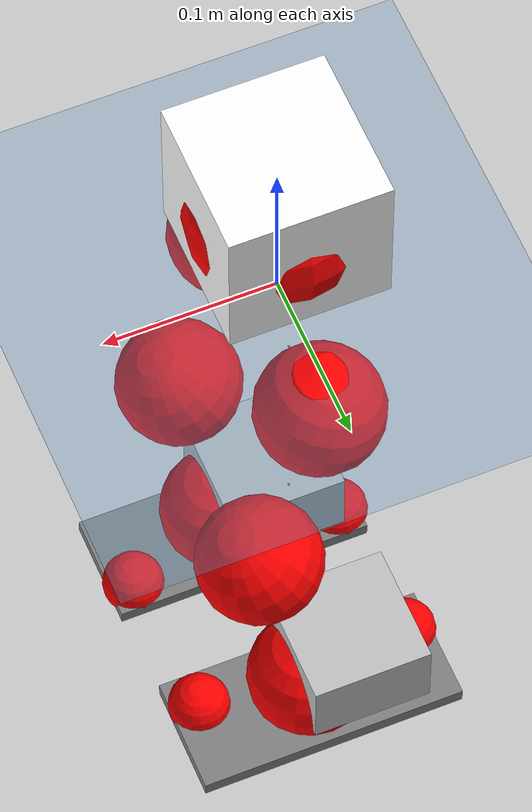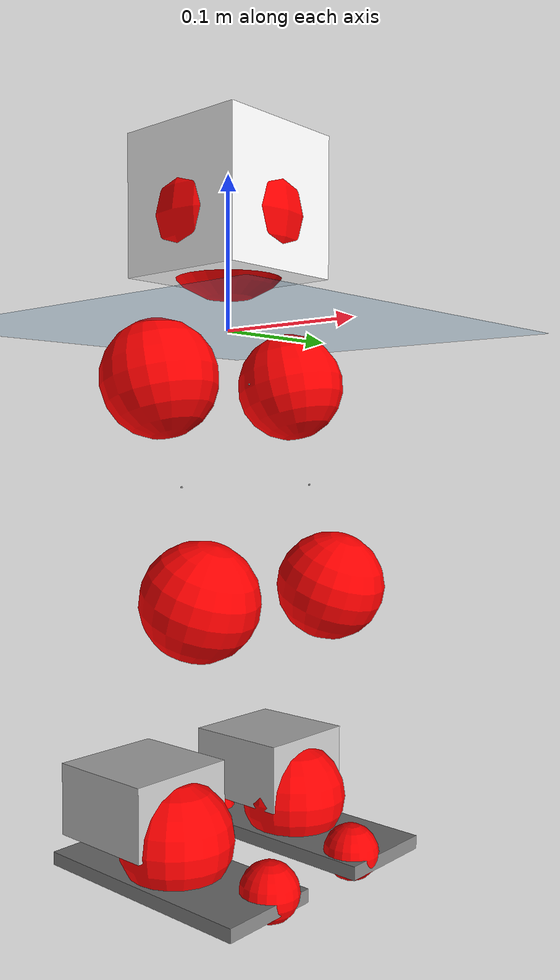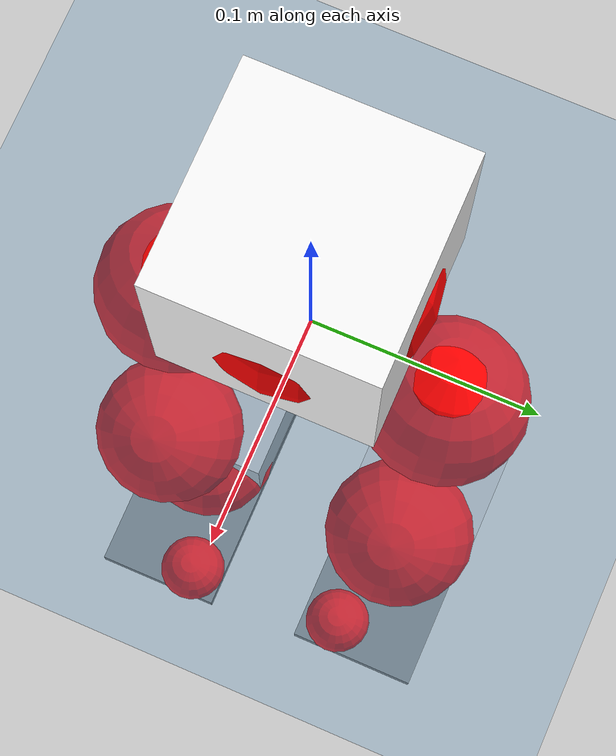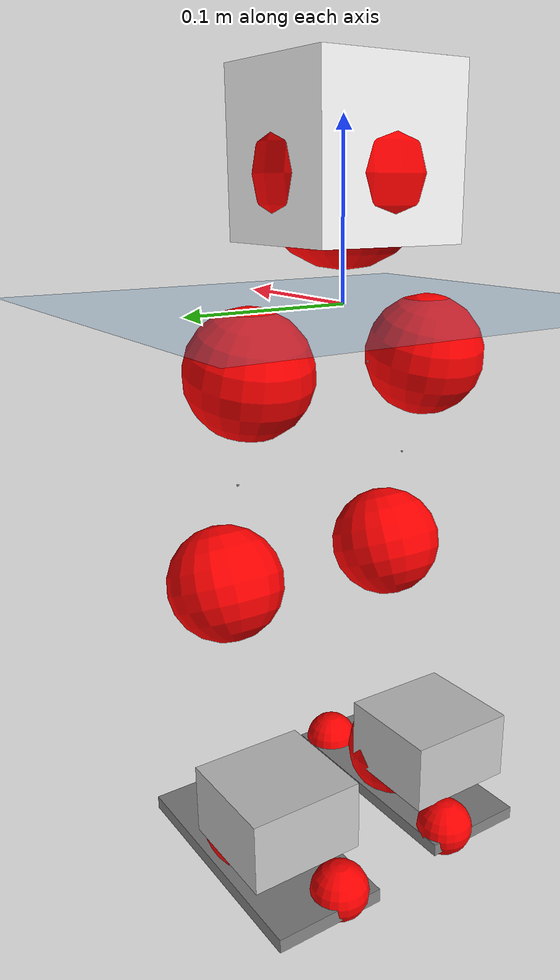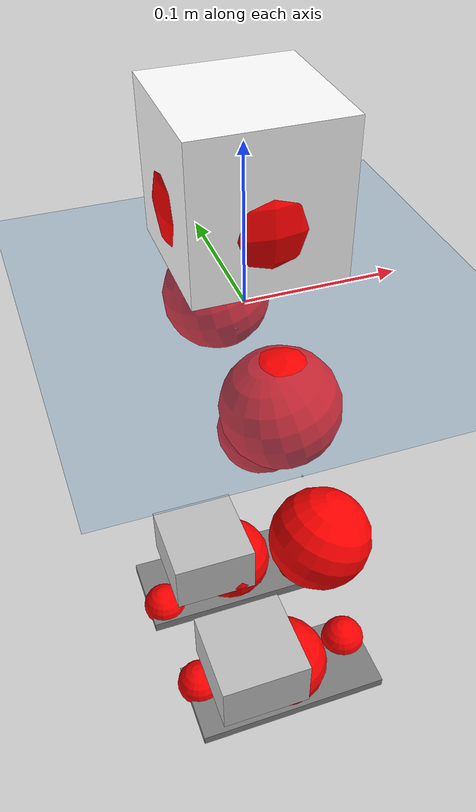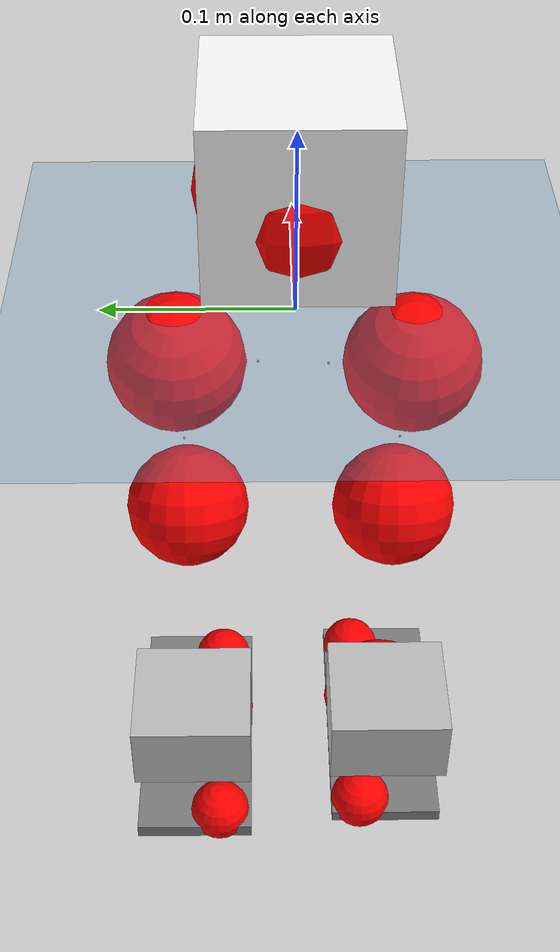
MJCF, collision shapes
<mujoco model="pi_12dof_release_v1">
  <compiler angle="radian" assetdir="assets" balanceinertia="true" inertiafromgeom="false"/>

  <option timestep="0.005" density="1.2" viscosity="2e-05"/>

  <size nkey="1"/>

  <visual>
    <quality shadowsize="8192"/>
    <map shadowclip="0.5"/>
  </visual>

  <default>
    <default class="/">
      <joint armature="0.01" damping="0.01" frictionloss="0.01"/>
      <geom contype="0" conaffinity="0" group="1" solref="-1000 -80"/>
      <site size="0.01 0.005 0.005" group="5"/>
      <general forcelimited="true" biastype="affine" gainprm="20" biasprm="0 -20 -0.5"/>
      <default class="foot">
        <geom size="0.0845 0.036 0.005" type="box" condim="6" group="4" priority="1" friction="0.9 0.2 0.2" solimp="0.015 1 0.005"/>
      </default>
      <default class="reward_collision_sphere">
        <geom group="5" rgba="1 0 0 1"/>
      </default>
    </default>
  </default>

  <asset>
    <texture type="skybox" colorspace="auto" name="//unnamed_texture_0" builtin="gradient" rgb1="0.95 0.95 0.95" rgb2="0.95 0.95 0.95" width="100" height="600"/>
    <texture type="2d" colorspace="auto" name="texplane" builtin="checker" rgb1="0.345 0.575 0.748" rgb2="0.345 0.575 0.748" markrgb="1 1 1" width="512" height="512"/>
    <material name="MatPlane" class="/" texture="texplane" texuniform="true" texrepeat="2 2" specular="0.9"/>
    <mesh name="baselink_1" class="/" file="baselink_1.STL"/>
    <mesh name="r_hip_pitch_link" class="/" file="r_hip_pitch_link.STL"/>
    <mesh name="r_hip_roll_link" class="/" file="r_hip_roll_link.STL"/>
    <mesh name="r_thigh_link" class="/" file="r_thigh_link.STL"/>
    <mesh name="r_calf_link" class="/" file="r_calf_link.STL"/>
    <mesh name="r_ankle_pitch_link" class="/" file="r_ankle_pitch_link.STL"/>
    <mesh name="r_ankle_roll_link" class="/" file="r_ankle_roll_link.STL"/>
    <mesh name="l_hip_pitch_link" class="/" file="l_hip_pitch_link.STL"/>
    <mesh name="l_hip_roll_link" class="/" file="l_hip_roll_link.STL"/>
    <mesh name="l_thigh_link" class="/" file="l_thigh_link.STL"/>
    <mesh name="l_calf_link" class="/" file="l_calf_link.STL"/>
    <mesh name="l_ankle_pitch_link" class="/" file="l_ankle_pitch_link.STL"/>
    <mesh name="l_ankle_roll_link" class="/" file="l_ankle_roll_link.STL"/>
  </asset>

  <worldbody>
    <geom name="floor" class="/" size="100 100 0.125" type="plane" group="0" material="MatPlane"/>
    <light name="toplight_shadow" class="/" pos="0 0 5" dir="0.0990148 0.0990148 -0.990148" type="directional" ambient="0.04 0.04 0.04" diffuse="0.55 0.55 0.55" specular="0.12 0.12 0.12"/>
    <light name="toplight_fill" class="/" pos="0 0 5" dir="0.0990148 0.0990148 -0.990148" type="directional" castshadow="false" ambient="0.04 0.04 0.04" diffuse="0.3 0.3 0.3" specular="0.08 0.08 0.08"/>
    <body name="trunk" pos="0.000118613 4.06415e-05 -0.000612539" quat="1 -1.06689e-05 -5.50651e-06 -9.31766e-06">
      <inertial pos="0.00272716 0.00153221 0.0415354" quat="0.695255 0.00980882 0.00936312 0.718635" mass="1.68291" diaginertia="0.008356 0.00287174 0.00418189"/>
      <joint name="//unnamed_joint_0" type="free"/>
      <geom name="//unnamed_geom_1" class="/" type="mesh" density="0" rgba="1 1 1 1" mesh="baselink_1"/>
      <geom name="//unnamed_geom_2" class="/" size="0.0459286 0.0459286 0.0459286" pos="0 0 0.0799622" type="box" rgba="1 1 1 1"/>
      <geom name="//unnamed_geom_3" class="reward_collision_sphere" size="0.0505214" pos="0 0 0.069967"/>
      <site name="imu" class="/" pos="-0.00516864 0.00203903 -0.00514487" size="0.00918572"/>
      <camera name="track" class="/" pos="0 -1.58613 0" quat="0.707107 0.707107 0 0" mode="trackcom"/>
      <camera name="ego_camera" class="/" pos="0.0722343 0 0.179915" quat="-0.5 -0.5 0.5 0.5"/>
      <body name="r_hip_pitch_link" pos="-0.000460262 -0.0177478 -0.033709" quat="0.99218 0.000179523 -0.124813 0.000385798">
        <inertial pos="-0.000530898 -0.0448935 0.000832024" quat="-0.0193686 0.70616 -0.0272717 0.707262" mass="0.29287" diaginertia="9.0932e-05 3.13106e-05 8.35203e-05"/>
        <joint name="r_hip_pitch_joint" class="/" pos="0 0 0" axis="-0.00420445 -0.999912 0.0126014" stiffness="0.000251521" range="-1.75737 1.2421" armature="0.00932255" damping="0.0112478" frictionloss="0.00877122"/>
        <geom name="//unnamed_geom_4" class="/" type="mesh" density="0" rgba="0.75294 0.75294 0.75294 1" mesh="r_hip_pitch_link"/>
        <geom name="//unnamed_geom_5" class="/" size="0.000459286 0.000459286 0.000459286" type="box" rgba="0.75294 0.75294 0.75294 1"/>
        <body name="r_hip_roll_link" pos="0.000592924 -0.0441216 -0.000260268" quat="1 1.19808e-05 9.86686e-05 2.37133e-05">
          <inertial pos="-0.00129865 -0.000675502 -0.0614116" quat="0.706343 -0.0795628 -0.0829253 0.698479" mass="0.291742" diaginertia="0.000277799 8.64548e-05 0.000121581"/>
          <joint name="r_hip_roll_joint" class="/" pos="0 0 0" axis="-0.999984 -0.00523494 0.00202487" range="-0.122302 0.486835" armature="0.009137" damping="0.00591811" frictionloss="0.0090472"/>
          <geom name="//unnamed_geom_6" class="/" type="mesh" density="0" rgba="0.75294 0.75294 0.75294 1" mesh="r_hip_roll_link"/>
          <geom name="//unnamed_geom_7" class="/" size="0.000459286 0.000459286 0.000459286" type="box" rgba="0.75294 0.75294 0.75294 1"/>
          <geom name="//unnamed_geom_8" class="reward_collision_sphere" size="0.0367429"/>
          <body name="r_thigh_link" pos="0.000620569 0.00141708 -0.067697" quat="1 0.000624906 -0.000290806 0.000677801">
            <inertial pos="0.000658647 0.000828743 -0.0474284" quat="0.736976 0.675919 0.000251048 -0.000343357" mass="0.0875538" diaginertia="0.000103719 2.90919e-05 5.75245e-05"/>
            <joint name="r_thigh_joint" class="/" pos="0 0 0" axis="-0.00162699 0.000283076 -0.999999" range="-0.301595 0.57876" armature="0.00981325" damping="0.0028742" frictionloss="0.00903204"/>
            <geom name="//unnamed_geom_9" class="/" type="mesh" density="0" rgba="0.75294 0.75294 0.75294 1" mesh="r_thigh_link"/>
            <geom name="//unnamed_geom_10" class="/" size="0.000459286 0.000459286 0.000459286" type="box" rgba="0.75294 0.75294 0.75294 1"/>
            <body name="r_calf_link" pos="-0.000923197 -0.000945239 -0.0696223" quat="0.947693 0.000400951 0.319182 -0.000557745">
              <inertial pos="-0.000557297 -0.00128923 -0.0695187" quat="0.999986 -0.00298153 0.000287744 0.00429228" mass="0.608719" diaginertia="0.0028329 0.00108154 0.000174131"/>
              <joint name="r_calf_joint" class="/" pos="0 0 0" axis="0.00837305 -0.99994 -0.007076" stiffness="0.00255402" range="-1.63241 0.650458" armature="0.00907147" damping="0.00626131" frictionloss="0.00959493"/>
              <geom name="//unnamed_geom_11" class="/" type="mesh" density="0" rgba="0.75294 0.75294 0.75294 1" mesh="r_calf_link"/>
              <geom name="//unnamed_geom_12" class="/" size="0.000459286 0.000459286 0.000459286" type="box" rgba="0.75294 0.75294 0.75294 1"/>
              <geom name="//unnamed_geom_13" class="reward_collision_sphere" size="0.0367429"/>
              <body name="r_ankle_pitch_link" pos="0.00312008 0.000604567 -0.139803" quat="0.980168 3.27466e-05 -0.198168 -1.64034e-07">
                <inertial pos="0.00459719 0.00272594 -0.000298757" quat="0.00224996 0.707018 -0.00228847 0.707188" mass="0.141636" diaginertia="0.000256004 7.2497e-05 0.000122749"/>
                <joint name="r_ankle_pitch_joint" class="/" pos="0 0 0" axis="-0.000489438 -0.999985 -0.00549843" range="-1.30193 0.484022" armature="0.00933553" damping="0.0192692" frictionloss="0.00988756"/>
                <geom name="//unnamed_geom_14" class="/" type="mesh" density="0" rgba="0.75294 0.75294 0.75294 1" mesh="r_ankle_pitch_link"/>
                <geom name="//unnamed_geom_15" class="/" size="0.0358243 0.0367429 0.0229643" type="box" rgba="0.75294 0.75294 0.75294 1"/>
                <body name="r_ankle_roll_link" pos="0.0759849 0.00150909 4.56054e-05" quat="1 -1.47118e-05 5.00101e-06 2.64738e-05">
                  <inertial pos="-0.022092 0.00056661 -0.0122058" quat="0.55764 0.428454 0.436817 0.560942" mass="0.390027" diaginertia="0.000936937 0.000324518 0.000283563"/>
                  <joint name="r_ankle_roll_joint" class="/" pos="0 0 0" axis="-1 0.000173281 5.5955e-05" range="-0.141541 0.149847" armature="0.00912859" damping="0.00696727" frictionloss="0.0102845"/>
                  <geom name="//unnamed_geom_16" class="/" type="mesh" density="0" rgba="0.75294 0.75294 0.75294 1" mesh="r_ankle_roll_link"/>
                  <geom name="//unnamed_geom_17" class="/" type="mesh" rgba="0.75294 0.75294 0.75294 1" mesh="r_ankle_roll_link"/>
                  <geom name="right_foot" class="foot" size="0.0781736 0.0339377 0.0041888" pos="-0.0491193 0 -0.0439792"/>
                  <geom name="//unnamed_geom_19" class="reward_collision_sphere" size="0.0367429" pos="-0.0481562 0 -0.0199906"/>
                  <geom name="//unnamed_geom_20" class="reward_collision_sphere" size="0.0183714" pos="0.0144469 0.0158613 -0.0399811"/>
                  <geom name="//unnamed_geom_21" class="reward_collision_sphere" size="0.0183714" pos="-0.115575 0.0158613 -0.0399811"/>
                  <site name="right_foot" class="foot" pos="-0.0491193 0 -0.0439792" size="0.00918572"/>
                </body>
              </body>
            </body>
          </body>
        </body>
      </body>
      <body name="l_hip_pitch_link" pos="0.000889888 0.0192722 -0.0330204" quat="0.992191 0.000121128 -0.124731 5.45047e-05">
        <inertial pos="0.00163458 0.0409692 -0.000599206" quat="-0.036617 0.714313 0.0280108 0.698307" mass="0.292969" diaginertia="0.000105095 3.30995e-05 0.000101683"/>
        <joint name="l_hip_pitch_joint" class="/" pos="0 0 0" axis="-0.000934559 0.999995 -0.00290353" range="-1.22289 1.71369" armature="0.00915257" damping="0.00743788" frictionloss="0.00852492"/>
        <geom name="//unnamed_geom_22" class="/" type="mesh" density="0" rgba="0.75294 0.75294 0.75294 1" mesh="l_hip_pitch_link"/>
        <geom name="//unnamed_geom_23" class="/" size="0.000459286 0.000459286 0.000459286" type="box" rgba="0.75294 0.75294 0.75294 1"/>
        <body name="l_hip_roll_link" pos="-3.91515e-05 0.0426686 -0.000117889" quat="1 0.000328364 0.000240268 0.000100579">
          <inertial pos="-0.00112031 -0.000541416 -0.060858" quat="0.698307 -0.0770906 -0.0735303 0.707826" mass="0.303977" diaginertia="0.000283587 8.97511e-05 0.000130358"/>
          <joint name="l_hip_roll_joint" class="/" pos="0 0 0" axis="-0.999981 -0.00590076 0.00149893" range="-0.451724 0.0747949" armature="0.00899289" damping="0.00236353" frictionloss="0.00943243"/>
          <geom name="//unnamed_geom_24" class="/" type="mesh" density="0" rgba="0.75294 0.75294 0.75294 1" mesh="l_hip_roll_link"/>
          <geom name="//unnamed_geom_25" class="/" size="0.000459286 0.000459286 0.000459286" type="box" rgba="0.75294 0.75294 0.75294 1"/>
          <geom name="//unnamed_geom_26" class="reward_collision_sphere" size="0.0367429"/>
          <body name="l_thigh_link" pos="0.000461846 -0.000458671 -0.0695927" quat="1 2.88573e-05 0.000517916 -0.000530433">
            <inertial pos="0.0016654 -0.000368604 -0.048285" quat="0.67539 0.737461 2.98726e-07 -1.80459e-07" mass="0.0880931" diaginertia="0.000108115 3.13719e-05 6.14482e-05"/>
            <joint name="l_thigh_joint" class="/" pos="0 0 0" axis="-0.00338321 -0.00133999 -0.999993" range="-0.616333 0.266482" armature="0.00953069" damping="0.0102179" frictionloss="0.00889611"/>
            <geom name="//unnamed_geom_27" class="/" type="mesh" density="0" rgba="0.75294 0.75294 0.75294 1" mesh="l_thigh_link"/>
            <geom name="//unnamed_geom_28" class="/" size="0.000459286 0.000459286 0.000459286" type="box" rgba="0.75294 0.75294 0.75294 1"/>
            <body name="l_calf_link" pos="0.000414954 0.000999258 -0.0705497" quat="0.947557 -0.000556914 0.319587 -0.00055096">
              <inertial pos="0.000403734 0.0016307 -0.0695218" quat="0.999915 0.00667902 -0.0111674 0.00114683" mass="0.635304" diaginertia="0.00291039 0.00110394 0.000173953"/>
              <joint name="l_calf_joint" class="/" pos="0 0 0" axis="-0.000337083 1 -9.54608e-05" range="-0.660988 1.66737" armature="0.00931955" damping="0.00402642" frictionloss="0.00912706"/>
              <geom name="//unnamed_geom_29" class="/" type="mesh" density="0" rgba="0.75294 0.75294 0.75294 1" mesh="l_calf_link"/>
              <geom name="//unnamed_geom_30" class="/" size="0.000459286 0.000459286 0.000459286" type="box" rgba="0.75294 0.75294 0.75294 1"/>
              <geom name="//unnamed_geom_31" class="reward_collision_sphere" size="0.0367429"/>
              <body name="l_ankle_pitch_link" pos="0.000799438 -1.55799e-05 -0.142348" quat="0.98008 -0.000105898 -0.198604 0.000122469">
                <inertial pos="0.00463565 0.00173403 -0.000534984" quat="-0.00661702 0.7061 0.00545574 0.70806" mass="0.131787" diaginertia="0.000245919 6.76282e-05 0.000115058"/>
                <joint name="l_ankle_pitch_joint" class="/" pos="0 0 0" axis="0.00114858 0.999941 -0.010839" range="-0.498703 1.29532" armature="0.00904659" damping="0" frictionloss="0.00944653"/>
                <geom name="//unnamed_geom_32" class="/" type="mesh" density="0" rgba="0.75294 0.75294 0.75294 1" mesh="l_ankle_pitch_link"/>
                <geom name="//unnamed_geom_33" class="/" size="0.0358243 0.0367429 0.0229643" type="box" rgba="0.75294 0.75294 0.75294 1"/>
                <body name="l_ankle_roll_link" pos="0.0717762 -0.0010359 -0.00047114" quat="1 -3.90842e-05 0.000212309 -0.00040707">
                  <inertial pos="-0.024511 -0.000764976 -0.0147022" quat="0.553706 0.437202 0.429375 0.563828" mass="0.395503" diaginertia="0.000943037 0.000330045 0.000293656"/>
                  <joint name="l_ankle_roll_joint" class="/" pos="0 0 0" axis="-0.99992 -0.00678564 -0.010675" range="-0.157156 0.102424" armature="0.00925752" damping="0.00963713" frictionloss="0.00806581"/>
                  <geom name="//unnamed_geom_34" class="/" type="mesh" density="0" rgba="0.75294 0.75294 0.75294 1" mesh="l_ankle_roll_link"/>
                  <geom name="//unnamed_geom_35" class="/" type="mesh" rgba="0.75294 0.75294 0.75294 1" mesh="l_ankle_roll_link"/>
                  <geom name="left_foot" class="foot" size="0.0806412 0.0356963 0.00453259" pos="-0.0491193 0 -0.0439792"/>
                  <geom name="//unnamed_geom_37" class="reward_collision_sphere" size="0.0367429" pos="-0.0481562 0 -0.0199906"/>
                  <geom name="//unnamed_geom_38" class="reward_collision_sphere" size="0.0183714" pos="0.0144469 -0.0158613 -0.0399811"/>
                  <geom name="//unnamed_geom_39" class="reward_collision_sphere" size="0.0183714" pos="-0.115575 -0.0158613 -0.0399811"/>
                  <site name="left_foot" class="foot" pos="-0.0491193 0 -0.0439792" size="0.00918572"/>
                </body>
              </body>
            </body>
          </body>
        </body>
      </body>
    </body>
  </worldbody>

  <contact>
    <pair class="/" geom1="floor" geom2="right_foot" name="//unnamed_contact_1"/>
    <pair class="/" geom1="floor" geom2="left_foot" name="//unnamed_contact_0"/>
  </contact>

  <actuator>
    <general name="r_hip_pitch_joint" class="/" joint="r_hip_pitch_joint" forcerange="-18.8921 18.8921" gainprm="18.8887" biasprm="0 -18.8887 -0.446903"/>
    <general name="r_hip_roll_joint" class="/" joint="r_hip_roll_joint" forcerange="-19.2508 19.2508" gainprm="18.8887" biasprm="0 -18.8887 -0.446903"/>
    <general name="r_thigh_joint" class="/" joint="r_thigh_joint" forcerange="-19.3719 19.3719" gainprm="18.8887" biasprm="0 -18.8887 -0.446903"/>
    <general name="r_calf_joint" class="/" joint="r_calf_joint" forcerange="-18.5302 18.5302" gainprm="18.8887" biasprm="0 -18.8887 -0.446903"/>
    <general name="r_ankle_pitch_joint" class="/" joint="r_ankle_pitch_joint" forcerange="-19.3501 19.3501" gainprm="18.8887" biasprm="0 -18.8887 -0.446903"/>
    <general name="r_ankle_roll_joint" class="/" joint="r_ankle_roll_joint" forcerange="-20.6539 20.6539" gainprm="18.8887" biasprm="0 -18.8887 -0.446903"/>
    <general name="l_hip_pitch_joint" class="/" joint="l_hip_pitch_joint" forcerange="-19.6076 19.6076" gainprm="18.8887" biasprm="0 -18.8887 -0.446903"/>
    <general name="l_hip_roll_joint" class="/" joint="l_hip_roll_joint" forcerange="-17.5548 17.5548" gainprm="18.8887" biasprm="0 -18.8887 -0.446903"/>
    <general name="l_thigh_joint" class="/" joint="l_thigh_joint" forcerange="-18.7527 18.7527" gainprm="18.8887" biasprm="0 -18.8887 -0.446903"/>
    <general name="l_calf_joint" class="/" joint="l_calf_joint" forcerange="-19.9597 19.9597" gainprm="18.8887" biasprm="0 -18.8887 -0.446903"/>
    <general name="l_ankle_pitch_joint" class="/" joint="l_ankle_pitch_joint" forcerange="-18.5348 18.5348" gainprm="18.8887" biasprm="0 -18.8887 -0.446903"/>
    <general name="l_ankle_roll_joint" class="/" joint="l_ankle_roll_joint" forcerange="-19.8384 19.8384" gainprm="18.8887" biasprm="0 -18.8887 -0.446903"/>
  </actuator>

  <sensor>
    <gyro site="imu" name="imu_angular_velocity"/>
    <velocimeter site="imu" name="imu_linear_velocity"/>
    <framelinvel objtype="site" objname="left_foot" name="left_foot_global_linear_velocity"/>
    <framelinvel objtype="site" objname="right_foot" name="right_foot_global_linear_velocity"/>
  </sensor>

  <keyframe>
    <key name="home" qpos="0 0 0.291 1 0 0 0 0.4 0 0 -0.8 0.4 0 -0.4 0 0 0.8 -0.4 0"/>
  </keyframe>
</mujoco>
